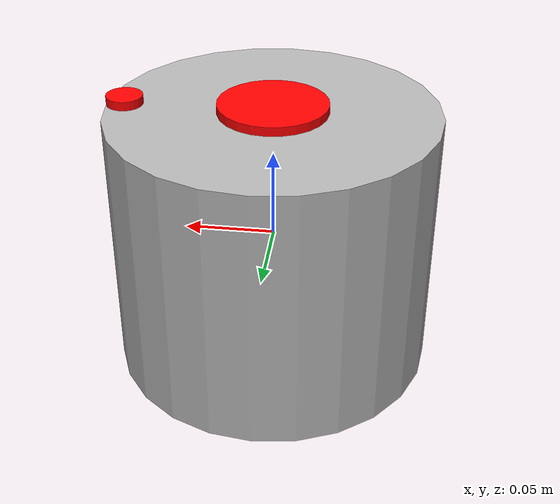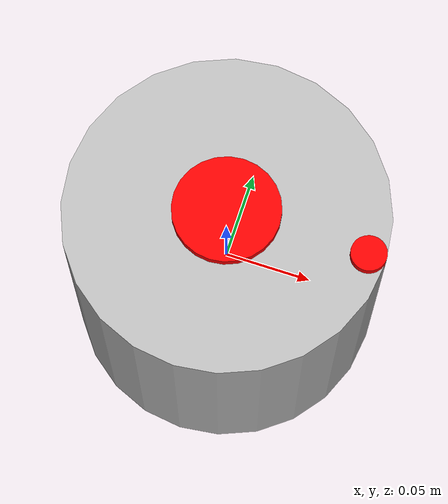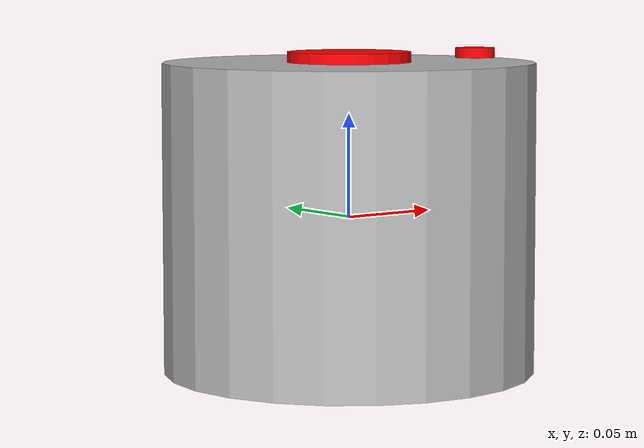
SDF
<?xml version="1.0" ?>
<sdf version="1.5">
  <model name="Robot Keeper">
    <link name="link">

      <visual name="visual">
        <geometry>
        	<cylinder>
			<radius>0.09</radius>
			<length>0.15</length>
		</cylinder>

        </geometry>
      </visual>
	<visual name="top">
		<pose>0.08 0 0.075 0 0 0</pose>
		<geometry>
			<cylinder>

				<radius>0.01</radius>
				<length>0.01</length>
			</cylinder>

       		</geometry>
		<material>
		  	<ambient>1 0 0 1</ambient>
			  <diffuse>1 0 0 1</diffuse>
			  <specular>0 0 0 0</specular>
			  <emissive>0 0 0 1</emissive>
        	</material>
	</visual>
	<visual name="identifier">
		<pose>0 0 0.075 0 0 0</pose>
		<geometry>
			<cylinder>

				<radius>0.03</radius>
				<length>0.01</length>
			</cylinder>

       		</geometry>
		<material>
		  	<ambient>1 0 0 1</ambient>
			  <diffuse>1 0 0 1</diffuse>
			  <specular>0 0 0 0</specular>
			  <emissive>0 0 0 1</emissive>
        	</material>
	</visual>
      <collision name="collision">
        <geometry>
                <cylinder>
			<radius>0.09</radius>
			<length>0.15</length>
		</cylinder>
        </geometry>
      </collision>
    </link>

	<plugin name="keeper_plugin" filename="libkeeper_plugin.so"/>

  </model>
</sdf>
